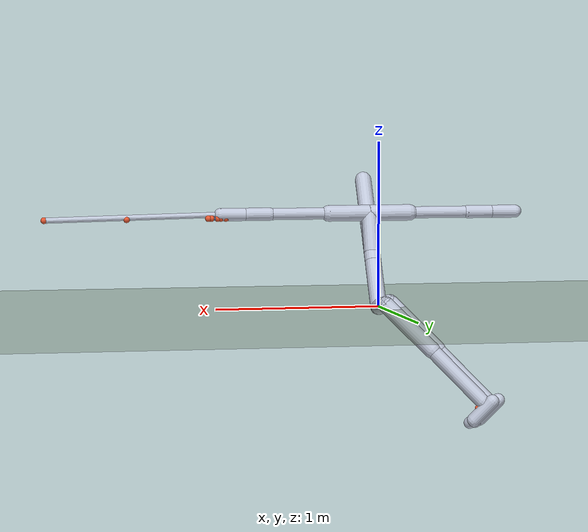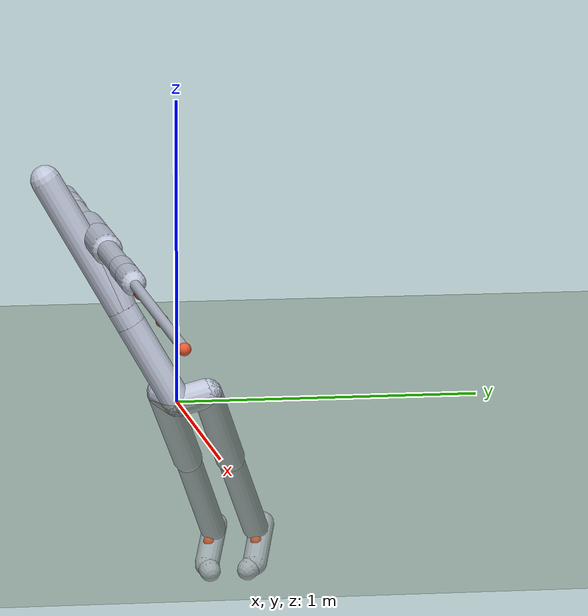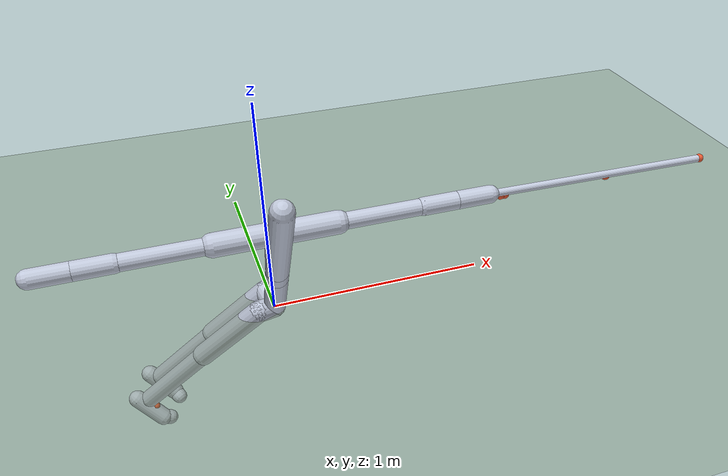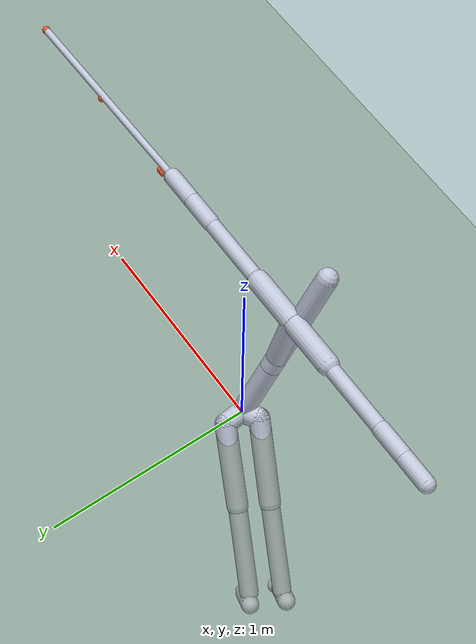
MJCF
<mujoco model="full_body_golf"><compiler angle="radian" autolimits="false" inertiafromgeom="false" /><option gravity="0 0 -9.8066499999999994" jacobian="dense"><flag contact="disable" /></option><default><default class="contact"><geom contype="0" conaffinity="0" /></default><default class="visual"><geom contype="0" conaffinity="0" group="1" mass="0" /></default></default><worldbody><body name="solid_reference:GolfSwing3D_Kinetic/Hips and Torso Inputs/LowerTorso" pos="0 0 0" quat="0.9659258262890682 0.25881904510252068 0 0"><joint name="TranslationInputX" type="slide" axis="1 0 0" limited="false" damping="0" armature="0" frictionloss="0" stiffness="0" /><joint name="TranslationInputY" type="slide" axis="0 1 0" limited="false" damping="0" armature="0" frictionloss="0" stiffness="0" /><joint name="TranslationInputZ" type="slide" axis="0 0 1" limited="false" damping="0" armature="0" frictionloss="0" stiffness="0" /><joint name="HipInputX" type="hinge" axis="1 0 0" limited="false" damping="0" armature="0" frictionloss="0" stiffness="0" /><joint name="HipInputY" type="hinge" axis="0 1 0" limited="false" damping="0" armature="0" frictionloss="0" stiffness="0" /><joint name="HipInputZ" type="hinge" axis="0 0 1" limited="false" damping="0" armature="0" frictionloss="0" stiffness="0" /><inertial mass="20" pos="0 0 0.15239999999999998" fullinertia="0.27096719999999991 0.27096719999999991 0.23225759999999995 0 0 0" /><body name="solid_reference:GolfSwing3D_Kinetic/Hips and Torso Inputs/UpperTorsoBase" pos="0 0 0.30479999999999996" quat="1 -6.1230317691118863e-17 0 0"><joint name="TorsoInput" type="hinge" axis="0 0 1" limited="false" damping="0" armature="0" frictionloss="0" stiffness="0" /><inertial mass="4" pos="0 0 0.030480000000000004" fullinertia="0.024464467199999992 0.024464467199999992 0.046451519999999989 0 0 0" /><body name="solid_reference:GolfSwing3D_Kinetic/Hips and Torso Inputs/COMRod" pos="0 0 0.060960000000000007" quat="0 1 0 0"><joint name="SpineInputX" type="hinge" axis="1 0 0" limited="false" damping="0" armature="0" frictionloss="0" stiffness="0" /><joint name="SpineInputY" type="hinge" axis="0 1 0" limited="false" damping="0" armature="0" frictionloss="0" stiffness="0" /><inertial mass="23.048775265052232" pos="0 -2.9590710529109247e-17 -0.22553720535702354" fullinertia="0.80199850887303348 0.80199850887303348 0.22065354520177177 0 0 -6.9108739577236211e-17" /><body name="solid_reference:GolfSwing3D_Kinetic/HubtoLS" pos="0 -0.050800000000000026 -0.24384000000000003" quat="-0.70710678118654746 4.3296372853596771e-17 0.70710678118654746 -4.3296372853596771e-17"><joint name="LScapInputX" type="hinge" axis="1 0 0" limited="false" damping="0" armature="0" frictionloss="0" stiffness="0" /><joint name="LScapInputY" type="hinge" axis="0 1 0" limited="false" damping="0" armature="0" frictionloss="0" stiffness="0" /><inertial mass="10" pos="2.8199664825478977e-17 0 -0.127" fullinertia="0.068279433333333348 0.068279433333333348 0.029032199999999994 0 8.714636419900524e-18 0" /><body name="solid_reference:GolfSwing3D_Kinetic/LUpperArm" pos="5.6399329650957953e-17 0 -0.254" quat="0 0.70710678118654768 0 -0.70710678118654746"><joint name="LSInputX" type="hinge" axis="1 0 0" limited="false" damping="0" armature="0" frictionloss="0" stiffness="0" /><joint name="LSInputY" type="hinge" axis="0 1 0" limited="false" damping="0" armature="0" frictionloss="0" stiffness="0" /><joint name="LSInputZ" type="hinge" axis="0 0 1" limited="false" damping="0" armature="0" frictionloss="0" stiffness="0" /><inertial mass="2.2679618500000003" pos="0.18414999999999998 0 0" fullinertia="0.0022405223465673126 0.026756714145570862 0.026756714145570862 0 0 0" /><body name="solid_reference:GolfSwing3D_Kinetic/Left Elbow Joint/Spherical Solid" pos="0.36829999999999996 0 0" quat="0.70710678118654746 0.70710678118654746 0 0"><joint name="LEInput" type="hinge" axis="0 0 1" limited="false" damping="0" armature="0" frictionloss="0" stiffness="0" /><inertial mass="1.1339809250000001" pos="0.07619999999999999 0 0" fullinertia="0.0011202611732836563 0.002754927987360828 0.002754927987360828 0 0 0" /><body name="solid_reference:GolfSwing3D_Kinetic/Left Forearm/LLowerForearm" pos="0.15239999999999998 0 0" quat="0.70710678118654746 3.5208250080591975e-17 0.70710678118654746 1.2180099578778551e-16"><joint name="LFInput" type="hinge" axis="0 0 1" limited="false" damping="0" armature="0" frictionloss="0" stiffness="0" /><inertial mass="1.1339809250000001" pos="0 0 0.07619999999999999" fullinertia="0.002754927987360828 0.002754927987360828 0.0011202611732836563 0 0 0" /><body name="solid_reference:GolfSwing3D_Kinetic/Club/Clubface Vector" pos="0 0 0.15239999999999998" quat="0.70710678118654768 0.70710678118654746 -8.6592745707193566e-17 0"><joint name="LWInputX" type="hinge" axis="1 0 0" limited="false" damping="0" armature="0" frictionloss="0" stiffness="0" /><joint name="LWInputY" type="hinge" axis="0 1 0" limited="false" damping="0" armature="0" frictionloss="0" stiffness="0" /><inertial mass="1.4751951706945232" pos="0 0.24225324866350453 0.02531390969647751" fullinertia="0.2411055590422933 0.0015501313463273866 0.24110382266742844 0 -3.0927621317039844e-19 -3.0766162580265077e-05" /><site name="native_frame_6" size=".001" pos="0 0 0" quat="1 0 -2.8059337376043104e-18 0" /><site name="native_frame_13" size=".001" pos="0 1.0762 0.025399999999999999" quat="-4.8244918148568909e-18 0.70710678118654746 0.70710678118654746 8.7926813616971357e-18" /><site name="native_frame_14" size=".001" pos="0 0.038100000000000023 0.025399999999999999" quat="-4.8244918148568909e-18 0.70710678118654746 0.70710678118654746 8.7926813616971357e-18" /><site name="native_closure_b" size=".001" pos="0 0.076200000000000045 0.025399999999999999" quat="-4.8244918148568909e-18 0.70710678118654746 0.70710678118654746 8.7926813616971357e-18" /><geom class="visual" name="visual_capsule_0_solid_reference:GolfSwing3D_Kinetic/Club/Clubface Vector" type="capsule" fromto="0 0 0 0 1.0762 0.0254" size="0.0170528597" rgba="0.75 0.78 0.85 1" /><geom class="visual" name="visual_com_0" type="sphere" pos="0 1.0762 0.0254" size="0.02" rgba="0.9 0.35 0.2 1" /><geom class="visual" name="visual_com_1" type="sphere" pos="0 0.5762 0.0254" size="0.02" rgba="0.9 0.35 0.2 1" /><geom class="visual" name="visual_com_2" type="sphere" pos="0 0.05715 0.0254" size="0.02" rgba="0.9 0.35 0.2 1" /><geom class="visual" name="visual_com_3" type="sphere" pos="0 0.01905 0.0254" size="0.02" rgba="0.9 0.35 0.2 1" /><geom class="visual" name="visual_com_4" type="sphere" pos="0 -0.03175 0.0254" size="0.02" rgba="0.9 0.35 0.2 1" /><geom class="visual" name="visual_com_5" type="sphere" pos="0 0 0.0254" size="0.02" rgba="0.9 0.35 0.2 1" /><geom class="visual" name="visual_com_6" type="sphere" pos="0 0 0.0127" size="0.02" rgba="0.9 0.35 0.2 1" /><geom class="visual" name="visual_com_7" type="sphere" pos="0 0.0762 0.0254" size="0.02" rgba="0.9 0.35 0.2 1" /><geom class="visual" name="visual_frame_38" type="sphere" pos="0 0 0" size="0.012" rgba="0.2 0.6 0.95 1" /><geom class="visual" name="visual_frame_45" type="sphere" pos="0 1.0762 0.0254" size="0.012" rgba="0.2 0.6 0.95 1" /><geom class="visual" name="visual_frame_46" type="sphere" pos="0 0.0381 0.0254" size="0.012" rgba="0.2 0.6 0.95 1" /></body><site name="native_frame_3" size=".001" pos="0 0 0" quat="1 0 0 0" /><geom class="visual" name="visual_capsule_13_solid_reference:GolfSwing3D_Kinetic/Left Forearm/LLowerForearm" type="capsule" fromto="0 0 0 0 0 0.1524" size="0.0397365195" rgba="0.75 0.78 0.85 1" /><geom class="visual" name="visual_com_18" type="sphere" pos="0 0 0.0762" size="0.02" rgba="0.9 0.35 0.2 1" /><geom class="visual" name="visual_frame_35" type="sphere" pos="0 0 0" size="0.012" rgba="0.2 0.6 0.95 1" /></body><site name="native_frame_2" size=".001" pos="0 0 0" quat="1 0 0 0" /><geom class="visual" name="visual_capsule_12_solid_reference:GolfSwing3D_Kinetic/Left Elbow Joint/Spherical Solid" type="capsule" fromto="0 0 0 0.1524 0 0" size="0.0397365195" rgba="0.75 0.78 0.85 1" /><geom class="visual" name="visual_com_17" type="sphere" pos="0.0762 0 0" size="0.02" rgba="0.9 0.35 0.2 1" /><geom class="visual" name="visual_frame_34" type="sphere" pos="0 0 0" size="0.012" rgba="0.2 0.6 0.95 1" /></body><site name="native_frame_5" size=".001" pos="0 0 0" quat="1 0 0 0" /><geom class="visual" name="visual_capsule_11_solid_reference:GolfSwing3D_Kinetic/LUpperArm" type="capsule" fromto="0 0 0 0.3683 0 0" size="0.0361490133" rgba="0.75 0.78 0.85 1" /><geom class="visual" name="visual_com_16" type="sphere" pos="0.18415 0 0" size="0.02" rgba="0.9 0.35 0.2 1" /><geom class="visual" name="visual_frame_37" type="sphere" pos="0 0 0" size="0.012" rgba="0.2 0.6 0.95 1" /></body><site name="native_frame_4" size=".001" pos="0 0 0" quat="1 0 0 0" /><geom class="visual" name="visual_capsule_9_solid_reference:GolfSwing3D_Kinetic/HubtoLS" type="capsule" fromto="0 0 0 5.63993297e-17 0 -0.254" size="0.05" rgba="0.75 0.78 0.85 1" /><geom class="visual" name="visual_com_14" type="sphere" pos="2.81996648e-17 0 -0.127" size="0.02" rgba="0.9 0.35 0.2 1" /><geom class="visual" name="visual_frame_36" type="sphere" pos="0 0 0" size="0.012" rgba="0.2 0.6 0.95 1" /></body><body name="solid_reference:GolfSwing3D_Kinetic/HubtoRS" pos="0 -0.050800000000000026 -0.24384000000000003" quat="-0.70710678118654746 4.3296372853596771e-17 0.70710678118654746 -4.3296372853596771e-17"><joint name="RScapInputX" type="hinge" axis="1 0 0" limited="false" damping="0" armature="0" frictionloss="0" stiffness="0" /><joint name="RScapInputY" type="hinge" axis="0 1 0" limited="false" damping="0" armature="0" frictionloss="0" stiffness="0" /><inertial mass="10" pos="2.8199664825478977e-17 0 0.127" fullinertia="0.068279433333333348 0.068279433333333348 0.029032199999999994 -6.3871661046279814e-34 -8.714636419900524e-18 1.7341747816349223e-34" /><body name="solid_reference:GolfSwing3D_Kinetic/RUpperArm" pos="5.6399329650957953e-17 0 0.254" quat="0.70710678118654768 -4.3296372853596783e-17 -0.70710678118654746 -4.3296372853596771e-17"><joint name="RSInputX" type="hinge" axis="1 0 0" limited="false" damping="0" armature="0" frictionloss="0" stiffness="0" /><joint name="RSInputY" type="hinge" axis="0 1 0" limited="false" damping="0" armature="0" frictionloss="0" stiffness="0" /><joint name="RSInputZ" type="hinge" axis="0 0 1" limited="false" damping="0" armature="0" frictionloss="0" stiffness="0" /><inertial mass="2.2679618500000003" pos="0.18414999999999998 0 0" fullinertia="0.0022405223465673126 0.026756714145570862 0.026756714145570862 0 0 0" /><body name="solid_reference:GolfSwing3D_Kinetic/Right Elbow Joint/Spherical Solid1" pos="0.36829999999999996 0 0" quat="0.70710678118654746 0.70710678118654746 0 0"><joint name="REInput" type="hinge" axis="0 0 1" limited="false" damping="0" armature="0" frictionloss="0" stiffness="0" /><inertial mass="1.1339809250000001" pos="0.07619999999999999 0 0" fullinertia="0.0011202611732836563 0.002754927987360828 0.002754927987360828 0 0 0" /><body name="solid_reference:GolfSwing3D_Kinetic/Right Forearm/RLowerForearm" pos="0.15239999999999998 0 0" quat="0.70710678118654746 3.5208250080591975e-17 0.70710678118654746 1.2180099578778551e-16"><joint name="RFInput" type="hinge" axis="0 0 1" limited="false" damping="0" armature="0" frictionloss="0" stiffness="0" /><inertial mass="1.1339809250000001" pos="0 0 0.07619999999999999" fullinertia="0.002754927987360828 0.002754927987360828 0.0011202611732836563 0 0 0" /><body name="solid_reference:GolfSwing3D_Kinetic/Grip/RHandStandoff" pos="0 0 0.15239999999999998" quat="0.70710678118654768 0.70710678118654746 -8.6592745707193566e-17 0"><joint name="RWInputX" type="hinge" axis="1 0 0" limited="false" damping="0" armature="0" frictionloss="0" stiffness="0" /><joint name="RWInputY" type="hinge" axis="0 1 0" limited="false" damping="0" armature="0" frictionloss="0" stiffness="0" /><inertial mass="0.01" pos="0 0 0.012699999999999999" fullinertia="9.4085833333333342e-07 9.4085833333333342e-07 8.0645000000000002e-07 0 0 0" /><site name="native_frame_11" size=".001" pos="0 0 0" quat="1 0 0 0" /><site name="native_closure_a" size=".001" pos="0 0 0.025399999999999999" quat="0 0.70710678118654746 0.70710678118654746 0" /><geom class="visual" name="visual_capsule_1_solid_reference:GolfSwing3D_Kinetic/Grip/RHandStandoff" type="capsule" fromto="0 0 0 0 0 0.0127" size="0.0129263995" rgba="0.75 0.78 0.85 1" /><geom class="visual" name="visual_com_8" type="sphere" pos="0 0 0.0127" size="0.02" rgba="0.9 0.35 0.2 1" /><geom class="visual" name="visual_frame_43" type="sphere" pos="0 0 0" size="0.012" rgba="0.2 0.6 0.95 1" /></body><site name="native_frame_8" size=".001" pos="0 0 0" quat="1 0 0 0" /><geom class="visual" name="visual_capsule_16_solid_reference:GolfSwing3D_Kinetic/Right Forearm/RLowerForearm" type="capsule" fromto="0 0 0 0 0 0.1524" size="0.0397365195" rgba="0.75 0.78 0.85 1" /><geom class="visual" name="visual_com_21" type="sphere" pos="0 0 0.0762" size="0.02" rgba="0.9 0.35 0.2 1" /><geom class="visual" name="visual_frame_40" type="sphere" pos="0 0 0" size="0.012" rgba="0.2 0.6 0.95 1" /></body><site name="native_frame_7" size=".001" pos="0 0 0" quat="1 0 0 0" /><geom class="visual" name="visual_capsule_15_solid_reference:GolfSwing3D_Kinetic/Right Elbow Joint/Spherical Solid1" type="capsule" fromto="0 0 0 0.1524 0 0" size="0.0397365195" rgba="0.75 0.78 0.85 1" /><geom class="visual" name="visual_com_20" type="sphere" pos="0.0762 0 0" size="0.02" rgba="0.9 0.35 0.2 1" /><geom class="visual" name="visual_frame_39" type="sphere" pos="0 0 0" size="0.012" rgba="0.2 0.6 0.95 1" /></body><site name="native_frame_10" size=".001" pos="0 0 0" quat="1 0 0 0" /><geom class="visual" name="visual_capsule_14_solid_reference:GolfSwing3D_Kinetic/RUpperArm" type="capsule" fromto="0 0 0 0.3683 0 0" size="0.0361490133" rgba="0.75 0.78 0.85 1" /><geom class="visual" name="visual_com_19" type="sphere" pos="0.18415 0 0" size="0.02" rgba="0.9 0.35 0.2 1" /><geom class="visual" name="visual_frame_42" type="sphere" pos="0 0 0" size="0.012" rgba="0.2 0.6 0.95 1" /></body><site name="native_frame_9" size=".001" pos="0 0 0" quat="1 0 0 1.4098833845736332e-49" /><geom class="visual" name="visual_capsule_10_solid_reference:GolfSwing3D_Kinetic/HubtoRS" type="capsule" fromto="0 0 0 5.63993297e-17 0 0.254" size="0.05" rgba="0.75 0.78 0.85 1" /><geom class="visual" name="visual_com_15" type="sphere" pos="2.81996648e-17 0 0.127" size="0.02" rgba="0.9 0.35 0.2 1" /><geom class="visual" name="visual_frame_41" type="sphere" pos="0 0 0" size="0.012" rgba="0.2 0.6 0.95 1" /></body><site name="native_frame_0" size=".001" pos="0 0 0" quat="1 0 0 0" /><site name="native_frame_12" size=".001" pos="0 -0.050800000000000026 -0.24384000000000003" quat="-0.70710678118654746 4.3296372853596771e-17 0.70710678118654746 -4.3296372853596771e-17" /><geom class="visual" name="visual_capsule_2_solid_reference:GolfSwing3D_Kinetic/Hips and Torso Inputs/COMRod" type="capsule" fromto="0 0 0 0 -0.0508 -0.24384" size="0.05" rgba="0.75 0.78 0.85 1" /><geom class="visual" name="visual_capsule_3_solid_reference:GolfSwing3D_Kinetic/Hips and Torso Inputs/COMRod" type="capsule" fromto="0 0 0 0 -0.0508 -0.24384" size="0.05" rgba="0.75 0.78 0.85 1" /><geom class="visual" name="visual_capsule_4_solid_reference:GolfSwing3D_Kinetic/Hips and Torso Inputs/COMRod" type="capsule" fromto="0 0 0 0 -6.24500451e-17 -0.49784" size="0.05" rgba="0.75 0.78 0.85 1" /><geom class="visual" name="visual_com_9" type="sphere" pos="0 -6.24500451e-17 -0.49784" size="0.02" rgba="0.9 0.35 0.2 1" /><geom class="visual" name="visual_com_10" type="sphere" pos="0 -4.51028104e-17 -0.37084" size="0.02" rgba="0.9 0.35 0.2 1" /><geom class="visual" name="visual_com_11" type="sphere" pos="0 -1.73472348e-17 -0.12192" size="0.02" rgba="0.9 0.35 0.2 1" /><geom class="visual" name="visual_frame_32" type="sphere" pos="0 0 0" size="0.012" rgba="0.2 0.6 0.95 1" /><geom class="visual" name="visual_frame_44" type="sphere" pos="0 -0.0508 -0.24384" size="0.012" rgba="0.2 0.6 0.95 1" /></body><site name="native_frame_1" size=".001" pos="0 0 0" quat="1 0 0 0" /><geom class="visual" name="visual_capsule_8_solid_reference:GolfSwing3D_Kinetic/Hips and Torso Inputs/UpperTorsoBase" type="capsule" fromto="0 0 0 0 0 0.06096" size="0.05" rgba="0.75 0.78 0.85 1" /><geom class="visual" name="visual_com_13" type="sphere" pos="0 0 0.03048" size="0.02" rgba="0.9 0.35 0.2 1" /><geom class="visual" name="visual_frame_33" type="sphere" pos="0 0 0" size="0.012" rgba="0.2 0.6 0.95 1" /></body><body name="femur_r" pos="-0.080099912134152185 -0.025474742625735861 0.037548021395818434" quat="-0.44025242306294182 0.33128948362340682 -0.1164252365266666 0.82635963498192166"><joint name="hip_flexion_r" type="hinge" axis="1 0 0" limited="false" damping="0" armature="0" frictionloss="0" stiffness="0" /><joint name="hip_adduction_r" type="hinge" axis="0 1 0" limited="false" damping="0" armature="0" frictionloss="0" stiffness="0" /><joint name="hip_rotation_r" type="hinge" axis="0 0 1" limited="false" damping="0" armature="0" frictionloss="0" stiffness="0" /><inertial mass="9.8004040535195198" pos="0 0 -0.16878299999999999" fullinertia="0.146652 0.13907 0.0364552 0 0 0" /><body name="tibia_r" pos="-0.0027303100000000001 -0.0080320600000000006 -0.40503800000000001" quat="-0.68032563526635448 -0.045560293331000923 0.73026005249954595 0.042444615611223695"><joint name="knee_angle_r" type="hinge" axis="0 0 1" limited="false" damping="0" armature="0" frictionloss="0" stiffness="0" /><inertial mass="3.9064009749525499" pos="-0.19989858006544362 -0.016671920830007934 0.01267965535918876" fullinertia="0.0068385950131652886 0.062544461365063905 0.063143643621770815 -0.007089257657203028 0.0040432054640277748 0.00050647371483151593" /><body name="talus_r" pos="-0.43008149190201472 -0.055850692968447455 0.029215632328256986" quat="-0.040983721135049729 0.65786519257030707 0.74121418846569442 -0.12702460322118414"><joint name="ankle_angle_r" type="hinge" axis="0 0 1" limited="false" damping="0" armature="0" frictionloss="0" stiffness="0" /><inertial mass="0.105364827375659" pos="0 0 0" fullinertia="0.0010802922078896457 0.00097359418212649242 0.00097474760998386147 -1.9921450752889781e-06 -1.1272976720589852e-05 2.1040297294393086e-07" /><body name="calcn_r" pos="-0.04308488941984643 -0.039082936777608254 0.01990208254801442" quat="0.55868557777432515 -0.24427213651161361 0.77038627510012303 0.18629690187541481"><joint name="subtalar_angle_r" type="hinge" axis="0 0 1" limited="false" damping="0" armature="0" frictionloss="0" stiffness="0" /><inertial mass="1.3170603421957301" pos="-0.013764685373467197 -0.030284559116326056 0.089490521562114109" fullinertia="0.003480528488629786 0.0028078001469351316 0.0022797013644350805 -0.00018271295269065615 0.00024062245680185368 0.0009470790215192538" /><body name="toes_r" pos="-0.025706922560188177 -0.098359633696163254 0.12622681616473569" quat="-0.12401516161188221 0.36838566190219008 -0.29395810993341609 0.87321295993568349"><joint name="mtp_angle_r" type="hinge" axis="0 0 1" limited="false" damping="0" armature="0" frictionloss="0" stiffness="0" /><inertial mass="0.228220216095677" pos="0.015089824105375448 -0.0059999523335454163 0.032839829199068818" fullinertia="0.00013372263590437545 0.00018391499999999996 0.00015834436409562451 -4.3423034421580179e-27 -3.5825279726319822e-05 3.6261960545473405e-26" /><geom class="visual" name="visual_capsule_21_toes_r" type="capsule" fromto="0 0 0 0.0150898241 -0.00599995233 0.0328398292" size="0.0363584778" rgba="0.75 0.78 0.85 1" /><geom class="visual" name="visual_com_26" type="sphere" pos="0.0150898241 -0.00599995233 0.0328398292" size="0.02" rgba="0.9 0.35 0.2 1" /></body><geom class="contact" name="contact_heel_r" type="sphere" size="0.035000000000000003" pos="-0.0015186443400354993 -0.0099594174084870219 0.0048480639694628378" /><site name="contact_site_heel_r" pos="-0.0015186443400354993 -0.0099594174084870219 0.0048480639694628378" size=".005" /><geom class="contact" name="contact_forefoot_r" type="sphere" size="0.029999999999999999" pos="-0.02429836674700447 -0.099619366419140598 0.12292506338284748" /><site name="contact_site_forefoot_r" pos="-0.02429836674700447 -0.099619366419140598 0.12292506338284748" size=".005" /><geom class="visual" name="visual_capsule_20_calcn_r" type="capsule" fromto="0 0 0 -0.0257069226 -0.0983596337 0.126226816" size="0.0415262524" rgba="0.75 0.78 0.85 1" /><geom class="visual" name="visual_com_25" type="sphere" pos="-0.0137646854 -0.0302845591 0.0894905216" size="0.02" rgba="0.9 0.35 0.2 1" /></body><geom class="visual" name="visual_capsule_19_talus_r" type="capsule" fromto="0 0 0 -0.0430848894 -0.0390829368 0.0199020825" size="0.0190703147" rgba="0.75 0.78 0.85 1" /><geom class="visual" name="visual_com_24" type="sphere" pos="0 0 0" size="0.02" rgba="0.9 0.35 0.2 1" /></body><geom class="visual" name="visual_capsule_18_tibia_r" type="capsule" fromto="8.67361738e-19 1.73472348e-18 0 -0.430081492 -0.055850693 0.0292156323" size="0.0436701994" rgba="0.75 0.78 0.85 1" /><geom class="visual" name="visual_com_23" type="sphere" pos="-0.19989858 -0.0166719208 0.0126796554" size="0.02" rgba="0.9 0.35 0.2 1" /></body><geom class="visual" name="visual_capsule_17_femur_r" type="capsule" fromto="0 0 0 -0.00273031 -0.00803206 -0.405038" size="0.05" rgba="0.75 0.78 0.85 1" /><geom class="visual" name="visual_com_22" type="sphere" pos="0 0 -0.168783" size="0.02" rgba="0.9 0.35 0.2 1" /></body><body name="femur_l" pos="-0.018875156906497693 0.099944326667745387 -0.031806580691071118" quat="-0.44025242306294182 0.33128948362340682 -0.1164252365266666 0.82635963498192166"><joint name="hip_flexion_l" type="hinge" axis="1 0 0" limited="false" damping="0" armature="0" frictionloss="0" stiffness="0" /><joint name="hip_adduction_l" type="hinge" axis="0 1 0" limited="false" damping="0" armature="0" frictionloss="0" stiffness="0" /><joint name="hip_rotation_l" type="hinge" axis="0 0 1" limited="false" damping="0" armature="0" frictionloss="0" stiffness="0" /><inertial mass="9.8004040535195198" pos="0 0 -0.16385" fullinertia="0.13820499999999999 0.13106000000000001 0.034355499999999997 0 0 0" /><body name="tibia_l" pos="0.00265051 -0.0077973199999999999 -0.39320100000000002" quat="-0.042444615611223695 0.73026005249954595 -0.045560293331000923 0.68032563526635448"><joint name="knee_angle_l" type="hinge" axis="0 0 1" limited="false" damping="0" armature="0" frictionloss="0" stiffness="0" /><inertial mass="3.9064009749525499" pos="-0.1979963214437368 0.016455200902117176 0.012547883302980851" fullinertia="0.0067862608895295981 0.061394755191849899 0.061982133918620508 0.006949603546877744 0.0039635567491348393 -0.00049649648738851694" /><body name="talus_l" pos="-0.42597139945707868 0.055330700770591698 0.028925891954734956" quat="-0.65786519257030707 0.040983721135049729 -0.12702460322118414 0.74121418846569442"><joint name="ankle_angle_l" type="hinge" axis="0 0 1" limited="false" damping="0" armature="0" frictionloss="0" stiffness="0" /><inertial mass="0.105364827375659" pos="0 0 0" fullinertia="0.0010774155998482104 0.00096232210777847098 0.00096356629237331806 -2.1488957437085246e-06 1.215998372522486e-05 -2.2695839707219404e-07" /><body name="calcn_l" pos="-0.042582517535629041 -0.039095979897126279 -0.019828275234819167" quat="-0.55868557777432515 -0.24427213651161361 0.77038627510012303 -0.18629690187541481"><joint name="subtalar_angle_l" type="hinge" axis="0 0 1" limited="false" damping="0" armature="0" frictionloss="0" stiffness="0" /><inertial mass="1.3170603421957301" pos="-0.013606639659407645 -0.029662498390090136 -0.088671303340184041" fullinertia="0.0034167520151407904 0.0027645081281228914 0.0022524898567363168 -0.00017714937677705715 -0.00023329554710432206 -0.00091824063893714762" /><body name="toes_l" pos="-0.025421485193895966 -0.097247514337216318 -0.1247622188945349" quat="-0.12401301979453323 -0.36838638292558912 0.29395942803439168 0.87321251621019225"><joint name="mtp_angle_l" type="hinge" axis="0 0 1" limited="false" damping="0" armature="0" frictionloss="0" stiffness="0" /><inertial mass="0.228220216095677" pos="0.014823642457330278 -0.0060000475435511248 -0.032592916299594321" fullinertia="0.00013249083765106228 0.00018081099999999993 0.00015619416234893769 -3.2356687906490853e-26 3.4488977830848687e-05 8.4461464115552122e-26" /><geom class="visual" name="visual_capsule_26_toes_l" type="capsule" fromto="0 0 0 0.0148236425 -0.00600004754 -0.0325929163" size="0.0365236703" rgba="0.75 0.78 0.85 1" /><geom class="visual" name="visual_com_31" type="sphere" pos="0.0148236425 -0.00600004754 -0.0325929163" size="0.02" rgba="0.9 0.35 0.2 1" /></body><geom class="contact" name="contact_heel_l" type="sphere" size="0.035000000000000003" pos="-0.0015186443400354993 -0.0099594174084870219 -0.0048480639694628378" /><site name="contact_site_heel_l" pos="-0.0015186443400354993 -0.0099594174084870219 -0.0048480639694628378" size=".005" /><geom class="contact" name="contact_forefoot_l" type="sphere" size="0.029999999999999999" pos="-0.02429836674700447 -0.099619366419140598 -0.12292506338284748" /><site name="contact_site_forefoot_l" pos="-0.02429836674700447 -0.099619366419140598 -0.12292506338284748" size=".005" /><geom class="visual" name="visual_capsule_25_calcn_l" type="capsule" fromto="0 0 0 -0.0254214852 -0.0972475143 -0.124762219" size="0.041766711" rgba="0.75 0.78 0.85 1" /><geom class="visual" name="visual_com_30" type="sphere" pos="-0.0136066397 -0.0296624984 -0.0886713033" size="0.02" rgba="0.9 0.35 0.2 1" /></body><geom class="visual" name="visual_capsule_24_talus_l" type="capsule" fromto="0 0 0 -0.0425825175 -0.0390959799 -0.0198282752" size="0.0191274351" rgba="0.75 0.78 0.85 1" /><geom class="visual" name="visual_com_29" type="sphere" pos="0 0 0" size="0.02" rgba="0.9 0.35 0.2 1" /></body><geom class="visual" name="visual_capsule_23_tibia_l" type="capsule" fromto="1.30104261e-18 0 0 -0.425971399 0.0553307008 0.028925892" size="0.0438803212" rgba="0.75 0.78 0.85 1" /><geom class="visual" name="visual_com_28" type="sphere" pos="-0.197996321 0.0164552009 0.0125478833" size="0.02" rgba="0.9 0.35 0.2 1" /></body><geom class="visual" name="visual_capsule_22_femur_l" type="capsule" fromto="0 0 0 0.00265051 -0.00779732 -0.393201" size="0.05" rgba="0.75 0.78 0.85 1" /><geom class="visual" name="visual_com_27" type="sphere" pos="0 0 -0.16385" size="0.02" rgba="0.9 0.35 0.2 1" /></body><site name="native_frame_15" size=".001" pos="0 0 0" quat="1 0 0 0" /><geom class="visual" name="visual_capsule_5_solid_reference:GolfSwing3D_Kinetic/Hips and Torso Inputs/LowerTorso" type="capsule" fromto="0 0 0 0 0 0.3048" size="0.05" rgba="0.75 0.78 0.85 1" /><geom class="visual" name="visual_capsule_6_solid_reference:GolfSwing3D_Kinetic/Hips and Torso Inputs/LowerTorso" type="capsule" fromto="0 0 0 -0.0800999121 -0.0254747426 0.0375480214" size="0.05" rgba="0.75 0.78 0.85 1" /><geom class="visual" name="visual_capsule_7_solid_reference:GolfSwing3D_Kinetic/Hips and Torso Inputs/LowerTorso" type="capsule" fromto="0 0 0 -0.0188751569 0.0999443267 -0.0318065807" size="0.05" rgba="0.75 0.78 0.85 1" /><geom class="visual" name="visual_com_12" type="sphere" pos="0 0 0.1524" size="0.02" rgba="0.9 0.35 0.2 1" /><geom class="visual" name="visual_frame_47" type="sphere" pos="0 0 0" size="0.012" rgba="0.2 0.6 0.95 1" /></body><geom class="visual" name="visual_floor" type="plane" size="3 3 0.05" pos="-0 -0 0" quat="1 0 0 0" rgba="0.35 0.45 0.3 1" /><light name="visual_key" pos="1.5 -1.5 3" dir="-1.5 1.5 -3" diffuse="0.8 0.8 0.8" /><light name="visual_fill" pos="-2 1 3" dir="2 -1 -3" diffuse="0.4 0.4 0.4" /><camera name="visual_default" pos="2.8 -2.8 1.2" mode="targetbody" target="solid_reference:GolfSwing3D_Kinetic/Hips and Torso Inputs/LowerTorso" /></worldbody><equality><weld name="native_grip" site1="native_closure_a" site2="native_closure_b" /></equality></mujoco>
